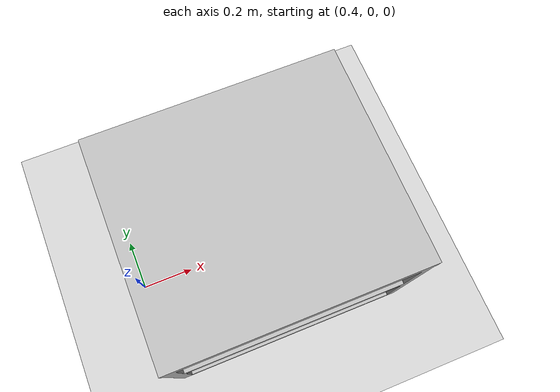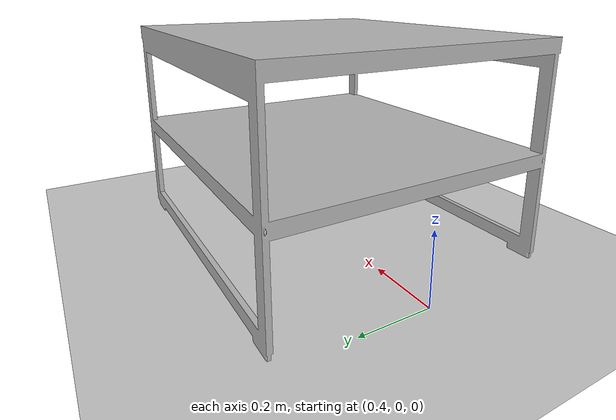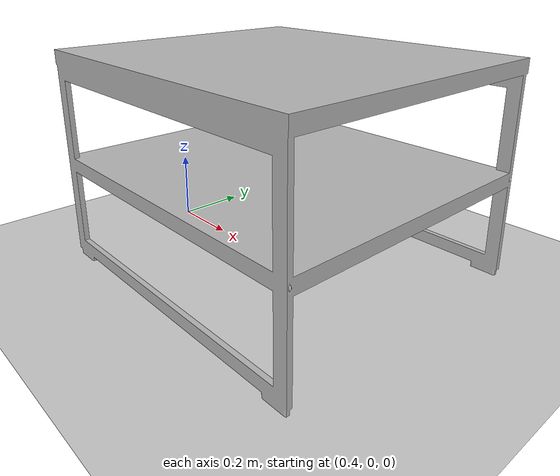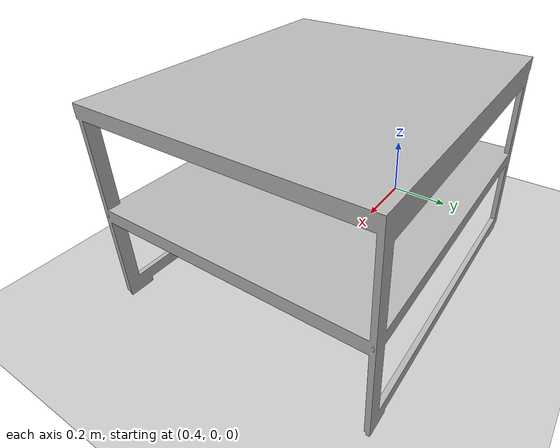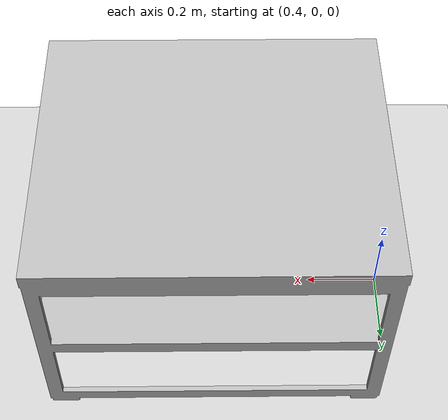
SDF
<?xml version="1.0"?>
<sdf version="1.4">
  <world name="default">
    <include>
      <uri>model://ground_plane</uri>
    </include>
    <include>
      <uri>model://sun</uri>
    </include>

    <include>
      <uri>model://coffeetable</uri>
      <name>table</name>
	    <pose>0.88 0 0  1.5708 0 0</pose>
    </include>

  </world>
</sdf>

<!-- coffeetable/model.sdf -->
<sdf version="1.4">
  <model name="coffeetable">
    <static>true</static>
    <link name="body">
      <inertial>
        <mass>20</mass>
        <inertia> <!-- inertias are tricky to compute -->
          <!-- http://gazebosim.org/tutorials?tut=inertia&cat=build_robot -->
          <ixx>1</ixx>       <!-- for a box: ixx = 0.083 * mass * (y*y + z*z) -->
          <ixy>000000</ixy>         <!-- for a box: ixy = 0 -->
          <ixz>0.000000</ixz>         <!-- for a box: ixz = 0 -->
          <iyy>1</iyy>       <!-- for a box: iyy = 0.083 * mass * (x*x + z*z) -->
          <iyz>0.000000</iyz>         <!-- for a box: iyz = 0 -->
          <izz>1</izz>       <!-- for a box: izz = 0.083 * mass * (x*x + y*y) -->
        </inertia>
      </inertial>
      <collision name="collision">
        <geometry>
          <mesh>
			     <uri>model://coffeetable/meshes/coffeetable.obj</uri>
			     <scale>1.3 1.3 0.5</scale>
          </mesh>
        </geometry>
      </collision>
      <visual name="visual">
        <geometry>
          <mesh>
			     <uri>model://coffeetable/meshes/coffeetable.obj</uri>
			     <scale>1.3 1.3 0.5</scale>
          </mesh>
        </geometry>
      </visual>
    </link>
  </model>
</sdf>
